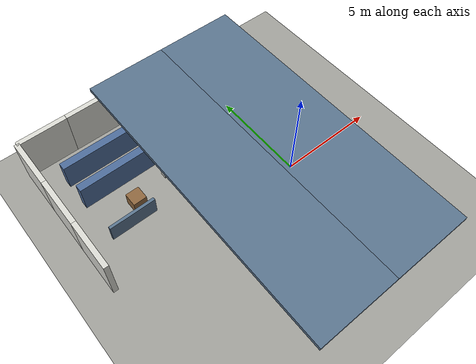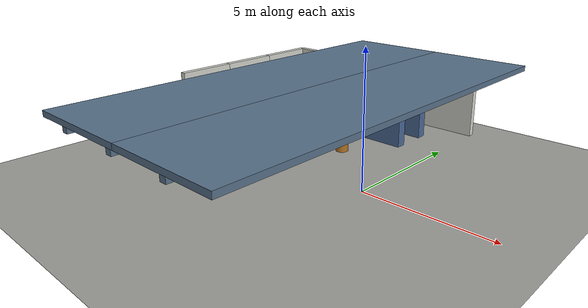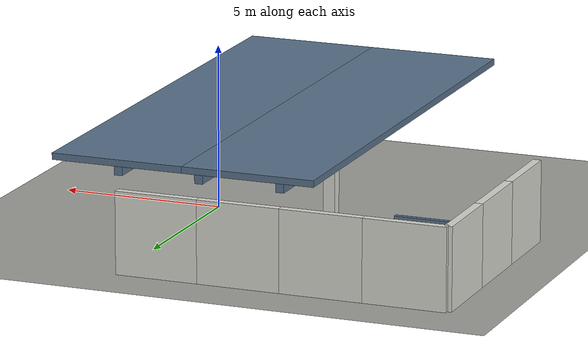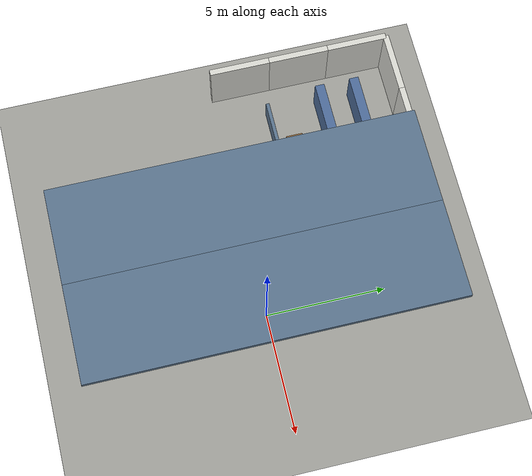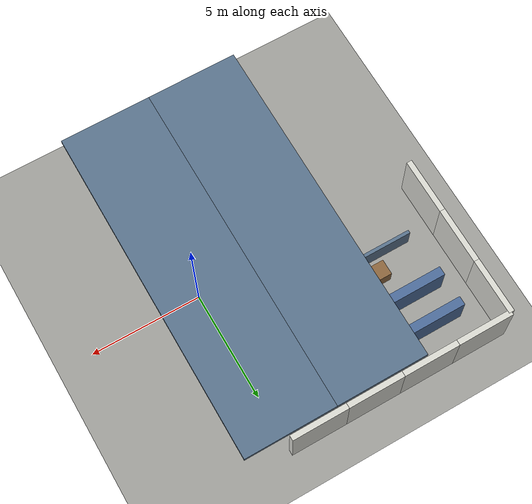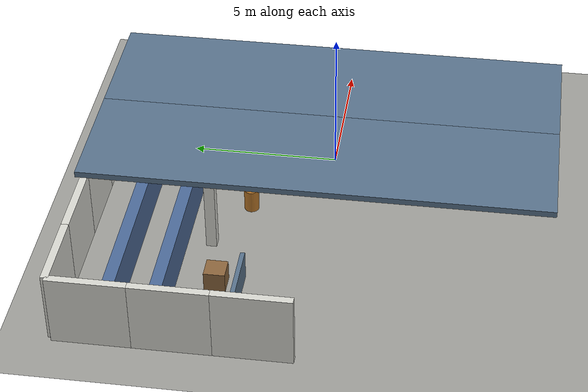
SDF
<sdf version="1.9">
 <world name="default">
  <model name="ground_plane">
   <static>true</static>
   <link name="link">
    <collision name="collision">
     <geometry><plane><normal>0 0 1</normal><size>200 200</size></plane></geometry>
     <surface><friction><ode><mu>1.0</mu><mu2>1.0</mu2></ode></friction></surface>
    </collision>
    <visual name="visual">
     <geometry><plane><normal>0 0 1</normal><size>200 200</size></plane></geometry>
     <material>
      <ambient>0.310 0.310 0.300 1</ambient>
      <diffuse>0.620 0.620 0.600 1</diffuse>
      <specular>0.05 0.05 0.05 1</specular>
      <pbr>
       <metal>
        <albedo_map>materials/textures/concrete.png</albedo_map>
        <metalness>0.0</metalness>
        <roughness>0.9</roughness>
       </metal>
      </pbr>
     </material>
    </visual>
   </link>
  </model>
  <model name="wall_north_0">
   <static>true</static>
   <pose>-8.85938 7.62500 1.25000 0 0.000000 0</pose>
   <link name="link">
    <collision name="collision">
     <geometry><box><size>2.53125 0.25000 2.50000</size></box></geometry>
     <surface><friction><ode><mu>1.0</mu><mu2>1.0</mu2></ode></friction></surface>
    </collision>
    <visual name="visual">
     <geometry><box><size>2.53125 0.25000 2.50000</size></box></geometry>
     <material>
      <ambient>0.425 0.425 0.410 1</ambient>
      <diffuse>0.850 0.850 0.820 1</diffuse>
      <specular>0.1 0.1 0.1 1</specular>
      <pbr>
       <metal>
        <albedo_map>materials/textures/painted_wall.png</albedo_map>
        <metalness>0.0</metalness>
        <roughness>0.85</roughness>
       </metal>
      </pbr>
     </material>
    </visual>
   </link>
  </model>
  <model name="wall_north_1">
   <static>true</static>
   <pose>-6.32812 7.62500 1.25000 0 0.000000 0</pose>
   <link name="link">
    <collision name="collision">
     <geometry><box><size>2.53125 0.25000 2.50000</size></box></geometry>
     <surface><friction><ode><mu>1.0</mu><mu2>1.0</mu2></ode></friction></surface>
    </collision>
    <visual name="visual">
     <geometry><box><size>2.53125 0.25000 2.50000</size></box></geometry>
     <material>
      <ambient>0.425 0.425 0.410 1</ambient>
      <diffuse>0.850 0.850 0.820 1</diffuse>
      <specular>0.1 0.1 0.1 1</specular>
      <pbr>
       <metal>
        <albedo_map>materials/textures/painted_wall.png</albedo_map>
        <metalness>0.0</metalness>
        <roughness>0.85</roughness>
       </metal>
      </pbr>
     </material>
    </visual>
   </link>
  </model>
  <model name="wall_north_2">
   <static>true</static>
   <pose>-3.79688 7.62500 1.25000 0 0.000000 0</pose>
   <link name="link">
    <collision name="collision">
     <geometry><box><size>2.53125 0.25000 2.50000</size></box></geometry>
     <surface><friction><ode><mu>1.0</mu><mu2>1.0</mu2></ode></friction></surface>
    </collision>
    <visual name="visual">
     <geometry><box><size>2.53125 0.25000 2.50000</size></box></geometry>
     <material>
      <ambient>0.425 0.425 0.410 1</ambient>
      <diffuse>0.850 0.850 0.820 1</diffuse>
      <specular>0.1 0.1 0.1 1</specular>
      <pbr>
       <metal>
        <albedo_map>materials/textures/painted_wall.png</albedo_map>
        <metalness>0.0</metalness>
        <roughness>0.85</roughness>
       </metal>
      </pbr>
     </material>
    </visual>
   </link>
  </model>
  <model name="wall_north_3">
   <static>true</static>
   <pose>-1.26562 7.62500 1.25000 0 0.000000 0</pose>
   <link name="link">
    <collision name="collision">
     <geometry><box><size>2.53125 0.25000 2.50000</size></box></geometry>
     <surface><friction><ode><mu>1.0</mu><mu2>1.0</mu2></ode></friction></surface>
    </collision>
    <visual name="visual">
     <geometry><box><size>2.53125 0.25000 2.50000</size></box></geometry>
     <material>
      <ambient>0.425 0.425 0.410 1</ambient>
      <diffuse>0.850 0.850 0.820 1</diffuse>
      <specular>0.1 0.1 0.1 1</specular>
      <pbr>
       <metal>
        <albedo_map>materials/textures/painted_wall.png</albedo_map>
        <metalness>0.0</metalness>
        <roughness>0.85</roughness>
       </metal>
      </pbr>
     </material>
    </visual>
   </link>
  </model>
  <model name="wall_west_3">
   <static>true</static>
   <pose>-10.12500 1.27083 1.25000 0 0.000000 0</pose>
   <link name="link">
    <collision name="collision">
     <geometry><box><size>0.25000 2.54167 2.50000</size></box></geometry>
     <surface><friction><ode><mu>1.0</mu><mu2>1.0</mu2></ode></friction></surface>
    </collision>
    <visual name="visual">
     <geometry><box><size>0.25000 2.54167 2.50000</size></box></geometry>
     <material>
      <ambient>0.425 0.425 0.410 1</ambient>
      <diffuse>0.850 0.850 0.820 1</diffuse>
      <specular>0.1 0.1 0.1 1</specular>
      <pbr>
       <metal>
        <albedo_map>materials/textures/painted_wall.png</albedo_map>
        <metalness>0.0</metalness>
        <roughness>0.85</roughness>
       </metal>
      </pbr>
     </material>
    </visual>
   </link>
  </model>
  <model name="wall_west_4">
   <static>true</static>
   <pose>-10.12500 3.81250 1.25000 0 0.000000 0</pose>
   <link name="link">
    <collision name="collision">
     <geometry><box><size>0.25000 2.54167 2.50000</size></box></geometry>
     <surface><friction><ode><mu>1.0</mu><mu2>1.0</mu2></ode></friction></surface>
    </collision>
    <visual name="visual">
     <geometry><box><size>0.25000 2.54167 2.50000</size></box></geometry>
     <material>
      <ambient>0.425 0.425 0.410 1</ambient>
      <diffuse>0.850 0.850 0.820 1</diffuse>
      <specular>0.1 0.1 0.1 1</specular>
      <pbr>
       <metal>
        <albedo_map>materials/textures/painted_wall.png</albedo_map>
        <metalness>0.0</metalness>
        <roughness>0.85</roughness>
       </metal>
      </pbr>
     </material>
    </visual>
   </link>
  </model>
  <model name="wall_west_5">
   <static>true</static>
   <pose>-10.12500 6.35417 1.25000 0 0.000000 0</pose>
   <link name="link">
    <collision name="collision">
     <geometry><box><size>0.25000 2.54167 2.50000</size></box></geometry>
     <surface><friction><ode><mu>1.0</mu><mu2>1.0</mu2></ode></friction></surface>
    </collision>
    <visual name="visual">
     <geometry><box><size>0.25000 2.54167 2.50000</size></box></geometry>
     <material>
      <ambient>0.425 0.425 0.410 1</ambient>
      <diffuse>0.850 0.850 0.820 1</diffuse>
      <specular>0.1 0.1 0.1 1</specular>
      <pbr>
       <metal>
        <albedo_map>materials/textures/painted_wall.png</albedo_map>
        <metalness>0.0</metalness>
        <roughness>0.85</roughness>
       </metal>
      </pbr>
     </material>
    </visual>
   </link>
  </model>
  <model name="rack_n1a">
   <static>true</static>
   <pose>-5.25000 4.50000 0.75000 0 0.000000 0</pose>
   <link name="link">
    <collision name="collision">
     <geometry><box><size>7.50000 0.40000 1.50000</size></box></geometry>
     <surface><friction><ode><mu>1.0</mu><mu2>1.0</mu2></ode></friction></surface>
    </collision>
    <visual name="visual">
     <geometry><box><size>7.50000 0.40000 1.50000</size></box></geometry>
     <material>
      <ambient>0.150 0.210 0.300 1</ambient>
      <diffuse>0.300 0.420 0.600 1</diffuse>
      <specular>0.1 0.1 0.1 1</specular>
      <pbr>
       <metal>
        <albedo_map>materials/textures/steel.png</albedo_map>
        <metalness>0.0</metalness>
        <roughness>0.85</roughness>
       </metal>
      </pbr>
     </material>
    </visual>
   </link>
  </model>
  <model name="rack_n2a">
   <static>true</static>
   <pose>-5.25000 6.00000 0.75000 0 0.000000 0</pose>
   <link name="link">
    <collision name="collision">
     <geometry><box><size>7.50000 0.40000 1.50000</size></box></geometry>
     <surface><friction><ode><mu>1.0</mu><mu2>1.0</mu2></ode></friction></surface>
    </collision>
    <visual name="visual">
     <geometry><box><size>7.50000 0.40000 1.50000</size></box></geometry>
     <material>
      <ambient>0.150 0.210 0.300 1</ambient>
      <diffuse>0.300 0.420 0.600 1</diffuse>
      <specular>0.1 0.1 0.1 1</specular>
      <pbr>
       <metal>
        <albedo_map>materials/textures/steel.png</albedo_map>
        <metalness>0.0</metalness>
        <roughness>0.85</roughness>
       </metal>
      </pbr>
     </material>
    </visual>
   </link>
  </model>
  <model name="pillar_nw">
   <static>true</static>
   <pose>-5.00000 3.50000 1.50000 0 0.000000 0</pose>
   <link name="link">
    <collision name="collision">
     <geometry><box><size>0.35000 0.35000 3.00000</size></box></geometry>
     <surface><friction><ode><mu>1.0</mu><mu2>1.0</mu2></ode></friction></surface>
    </collision>
    <visual name="visual">
     <geometry><box><size>0.35000 0.35000 3.00000</size></box></geometry>
     <material>
      <ambient>0.425 0.425 0.410 1</ambient>
      <diffuse>0.850 0.850 0.820 1</diffuse>
      <specular>0.1 0.1 0.1 1</specular>
      <pbr>
       <metal>
        <albedo_map>materials/textures/painted_wall.png</albedo_map>
        <metalness>0.0</metalness>
        <roughness>0.85</roughness>
       </metal>
      </pbr>
     </material>
    </visual>
   </link>
  </model>
  <model name="crate_w1">
   <static>true</static>
   <pose>-7.00000 3.00000 0.35000 0 0.000000 0</pose>
   <link name="link">
    <collision name="collision">
     <geometry><box><size>0.70000 0.70000 0.70000</size></box></geometry>
     <surface><friction><ode><mu>1.0</mu><mu2>1.0</mu2></ode></friction></surface>
    </collision>
    <visual name="visual">
     <geometry><box><size>0.70000 0.70000 0.70000</size></box></geometry>
     <material>
      <ambient>0.275 0.200 0.120 1</ambient>
      <diffuse>0.550 0.400 0.240 1</diffuse>
      <specular>0.1 0.1 0.1 1</specular>
      <pbr>
       <metal>
        <albedo_map>materials/textures/crate.png</albedo_map>
        <metalness>0.0</metalness>
        <roughness>0.85</roughness>
       </metal>
      </pbr>
     </material>
    </visual>
   </link>
  </model>
  <model name="dock_rail_north">
   <static>true</static>
   <pose>-7.70000 2.20000 0.50000 0 0.000000 0</pose>
   <link name="link">
    <collision name="collision">
     <geometry><box><size>2.40000 0.15000 1.00000</size></box></geometry>
     <surface><friction><ode><mu>1.0</mu><mu2>1.0</mu2></ode></friction></surface>
    </collision>
    <visual name="visual">
     <geometry><box><size>2.40000 0.15000 1.00000</size></box></geometry>
     <material>
      <ambient>0.175 0.225 0.275 1</ambient>
      <diffuse>0.350 0.450 0.550 1</diffuse>
      <specular>0.1 0.1 0.1 1</specular>
      <pbr>
       <metal>
        <albedo_map>materials/textures/steel.png</albedo_map>
        <metalness>0.0</metalness>
        <roughness>0.85</roughness>
       </metal>
      </pbr>
     </material>
    </visual>
   </link>
  </model>
  <model name="roof_1">
   <static>true</static>
   <pose>-4.05000 0.00000 3.30000 0 0.000000 0</pose>
   <link name="link">
    <collision name="collision">
     <geometry><box><size>4.05000 15.25000 0.20000</size></box></geometry>
     <surface><friction><ode><mu>1.0</mu><mu2>1.0</mu2></ode></friction></surface>
    </collision>
    <visual name="visual">
     <geometry><box><size>4.05000 15.25000 0.20000</size></box></geometry>
     <material>
      <ambient>0.175 0.225 0.275 1</ambient>
      <diffuse>0.350 0.450 0.550 1</diffuse>
      <specular>0.1 0.1 0.1 1</specular>
      <pbr>
       <metal>
        <albedo_map>materials/textures/steel.png</albedo_map>
        <metalness>0.0</metalness>
        <roughness>0.85</roughness>
       </metal>
      </pbr>
     </material>
    </visual>
   </link>
  </model>
  <model name="roof_2">
   <static>true</static>
   <pose>0.00000 0.00000 3.30000 0 0.000000 0</pose>
   <link name="link">
    <collision name="collision">
     <geometry><box><size>4.05000 15.25000 0.20000</size></box></geometry>
     <surface><friction><ode><mu>1.0</mu><mu2>1.0</mu2></ode></friction></surface>
    </collision>
    <visual name="visual">
     <geometry><box><size>4.05000 15.25000 0.20000</size></box></geometry>
     <material>
      <ambient>0.175 0.225 0.275 1</ambient>
      <diffuse>0.350 0.450 0.550 1</diffuse>
      <specular>0.1 0.1 0.1 1</specular>
      <pbr>
       <metal>
        <albedo_map>materials/textures/steel.png</albedo_map>
        <metalness>0.0</metalness>
        <roughness>0.85</roughness>
       </metal>
      </pbr>
     </material>
    </visual>
   </link>
  </model>
  <model name="truss_2">
   <static>true</static>
   <pose>-5.00000 0.00000 3.05000 0 0.000000 0</pose>
   <link name="link">
    <collision name="collision">
     <geometry><box><size>0.25000 15.00000 0.30000</size></box></geometry>
     <surface><friction><ode><mu>1.0</mu><mu2>1.0</mu2></ode></friction></surface>
    </collision>
    <visual name="visual">
     <geometry><box><size>0.25000 15.00000 0.30000</size></box></geometry>
     <material>
      <ambient>0.175 0.225 0.275 1</ambient>
      <diffuse>0.350 0.450 0.550 1</diffuse>
      <specular>0.1 0.1 0.1 1</specular>
      <pbr>
       <metal>
        <albedo_map>materials/textures/steel.png</albedo_map>
        <metalness>0.0</metalness>
        <roughness>0.85</roughness>
       </metal>
      </pbr>
     </material>
    </visual>
   </link>
  </model>
  <model name="truss_3">
   <static>true</static>
   <pose>-2.50000 0.00000 3.05000 0 0.000000 0</pose>
   <link name="link">
    <collision name="collision">
     <geometry><box><size>0.25000 15.00000 0.30000</size></box></geometry>
     <surface><friction><ode><mu>1.0</mu><mu2>1.0</mu2></ode></friction></surface>
    </collision>
    <visual name="visual">
     <geometry><box><size>0.25000 15.00000 0.30000</size></box></geometry>
     <material>
      <ambient>0.175 0.225 0.275 1</ambient>
      <diffuse>0.350 0.450 0.550 1</diffuse>
      <specular>0.1 0.1 0.1 1</specular>
      <pbr>
       <metal>
        <albedo_map>materials/textures/steel.png</albedo_map>
        <metalness>0.0</metalness>
        <roughness>0.85</roughness>
       </metal>
      </pbr>
     </material>
    </visual>
   </link>
  </model>
  <model name="truss_4">
   <static>true</static>
   <pose>0.00000 0.00000 3.05000 0 0.000000 0</pose>
   <link name="link">
    <collision name="collision">
     <geometry><box><size>0.25000 15.00000 0.30000</size></box></geometry>
     <surface><friction><ode><mu>1.0</mu><mu2>1.0</mu2></ode></friction></surface>
    </collision>
    <visual name="visual">
     <geometry><box><size>0.25000 15.00000 0.30000</size></box></geometry>
     <material>
      <ambient>0.175 0.225 0.275 1</ambient>
      <diffuse>0.350 0.450 0.550 1</diffuse>
      <specular>0.1 0.1 0.1 1</specular>
      <pbr>
       <metal>
        <albedo_map>materials/textures/steel.png</albedo_map>
        <metalness>0.0</metalness>
        <roughness>0.85</roughness>
       </metal>
      </pbr>
     </material>
    </visual>
   </link>
  </model>
  <model name="barrel_north">
   <static>true</static>
   <pose>-3.00000 2.50000 0.40000 0 0 0</pose>
   <link name="link">
    <collision name="collision">
     <geometry><cylinder><radius>0.25</radius><length>0.8</length></cylinder></geometry>
     <surface><friction><ode><mu>1.0</mu><mu2>1.0</mu2></ode></friction></surface>
    </collision>
    <visual name="visual">
     <geometry><cylinder><radius>0.25</radius><length>0.8</length></cylinder></geometry>
     <material>
      <ambient>0.350 0.225 0.075 1</ambient>
      <diffuse>0.700 0.450 0.150 1</diffuse>
      <specular>0.1 0.1 0.1 1</specular>
      <pbr>
       <metal>
        <albedo_map>materials/textures/steel.png</albedo_map>
        <metalness>0.0</metalness>
        <roughness>0.85</roughness>
       </metal>
      </pbr>
     </material>
    </visual>
   </link>
  </model>
 </world>
</sdf>
